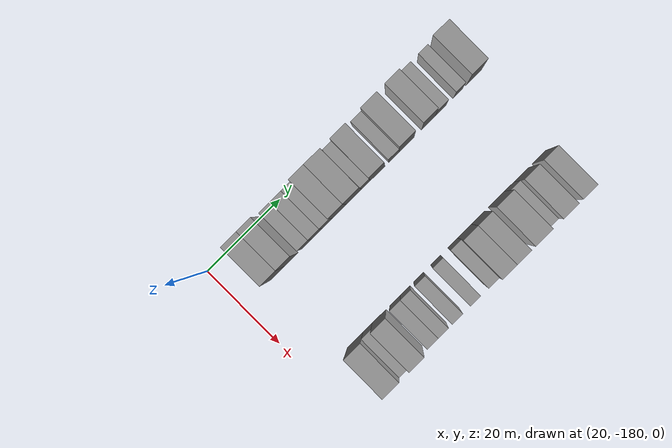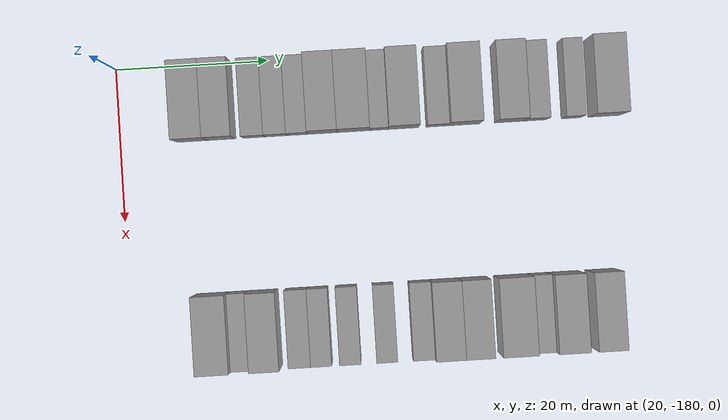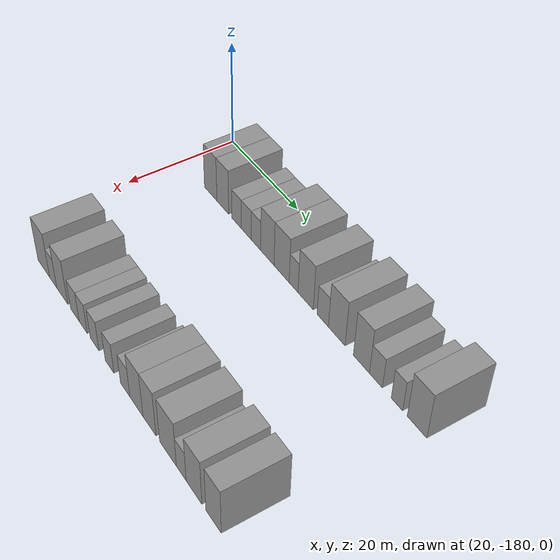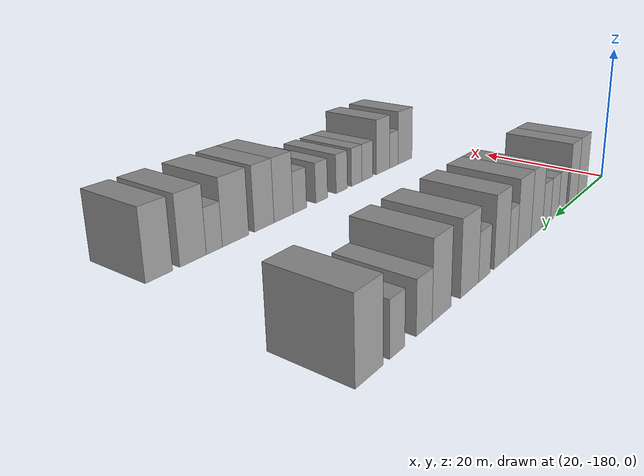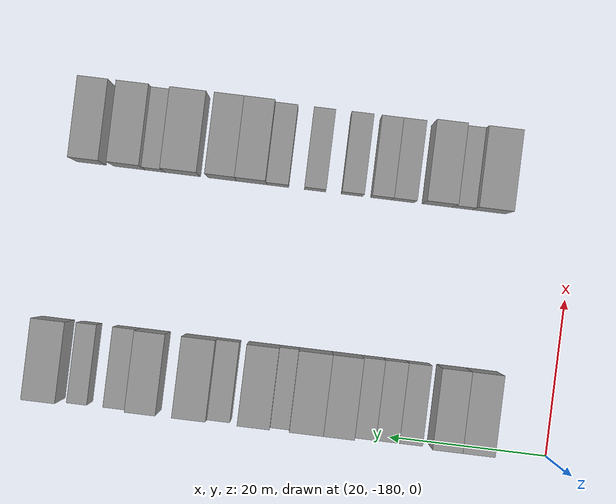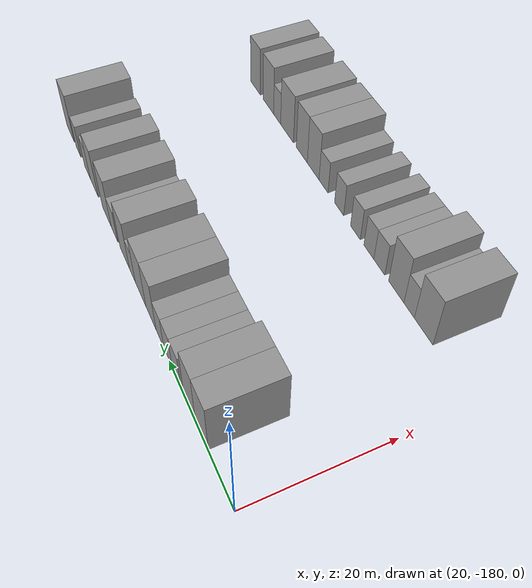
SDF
<sdf version="1.6">
 <world name="default">
  <model name="building_15">
   <static>1</static>
   <pose>25.0000 -170.4675 0 0.000000 0.000000 0.000000</pose>
   <link name="link">
    <pose>0 0 4.50 0 0 0</pose>
    <collision name="collision"><geometry><box><size>10.0000 3.9750 9.0000</size></box></geometry></collision>
    <visual name="visual">
     <cast_shadows>0</cast_shadows>
     <geometry><box><size>10.0000 3.9750 9.0000</size></box></geometry>
     <material>
      <script>
       <uri>model://grey_wall/materials/scripts</uri>
       <uri>model://grey_wall/materials/textures</uri>
       <name>vrc/grey_wall</name>
      </script>
     </material>
    </visual>
   </link>
  </model>
  <model name="building_16">
   <static>1</static>
   <pose>25.0000 -166.6328 0 0.000000 0.000000 0.000000</pose>
   <link name="link">
    <pose>0 0 4.50 0 0 0</pose>
    <collision name="collision"><geometry><box><size>10.0000 3.6943 9.0000</size></box></geometry></collision>
    <visual name="visual">
     <cast_shadows>0</cast_shadows>
     <geometry><box><size>10.0000 3.6943 9.0000</size></box></geometry>
     <material>
      <script>
       <uri>model://grey_wall/materials/scripts</uri>
       <uri>model://grey_wall/materials/textures</uri>
       <name>vrc/grey_wall</name>
      </script>
     </material>
    </visual>
   </link>
  </model>
  <model name="building_17">
   <static>1</static>
   <pose>25.0000 -162.3408 0 0.000000 0.000000 0.000000</pose>
   <link name="link">
    <pose>0 0 3.00 0 0 0</pose>
    <collision name="collision"><geometry><box><size>10.0000 2.8897 6.0000</size></box></geometry></collision>
    <visual name="visual">
     <cast_shadows>0</cast_shadows>
     <geometry><box><size>10.0000 2.8897 6.0000</size></box></geometry>
     <material>
      <script>
       <uri>model://grey_wall/materials/scripts</uri>
       <uri>model://grey_wall/materials/textures</uri>
       <name>vrc/grey_wall</name>
      </script>
     </material>
    </visual>
   </link>
  </model>
  <model name="building_18">
   <static>1</static>
   <pose>25.0000 -159.4392 0 0.000000 0.000000 0.000000</pose>
   <link name="link">
    <pose>0 0 3.00 0 0 0</pose>
    <collision name="collision"><geometry><box><size>10.0000 2.9136 6.0000</size></box></geometry></collision>
    <visual name="visual">
     <cast_shadows>0</cast_shadows>
     <geometry><box><size>10.0000 2.9136 6.0000</size></box></geometry>
     <material>
      <script>
       <uri>model://grey_wall/materials/scripts</uri>
       <uri>model://grey_wall/materials/textures</uri>
       <name>vrc/grey_wall</name>
      </script>
     </material>
    </visual>
   </link>
  </model>
  <model name="building_19">
   <static>1</static>
   <pose>25.0000 -156.6017 0 0.000000 0.000000 0.000000</pose>
   <link name="link">
    <pose>0 0 3.00 0 0 0</pose>
    <collision name="collision"><geometry><box><size>10.0000 2.7614 6.0000</size></box></geometry></collision>
    <visual name="visual">
     <cast_shadows>0</cast_shadows>
     <geometry><box><size>10.0000 2.7614 6.0000</size></box></geometry>
     <material>
      <script>
       <uri>model://grey_wall/materials/scripts</uri>
       <uri>model://grey_wall/materials/textures</uri>
       <name>vrc/grey_wall</name>
      </script>
     </material>
    </visual>
   </link>
  </model>
  <model name="building_20">
   <static>1</static>
   <pose>25.0000 -153.3091 0 0.000000 0.000000 0.000000</pose>
   <link name="link">
    <pose>0 0 4.50 0 0 0</pose>
    <collision name="collision"><geometry><box><size>10.0000 3.8238 9.0000</size></box></geometry></collision>
    <visual name="visual">
     <cast_shadows>0</cast_shadows>
     <geometry><box><size>10.0000 3.8238 9.0000</size></box></geometry>
     <material>
      <script>
       <uri>model://grey_wall/materials/scripts</uri>
       <uri>model://grey_wall/materials/textures</uri>
       <name>vrc/grey_wall</name>
      </script>
     </material>
    </visual>
   </link>
  </model>
  <model name="building_21">
   <static>1</static>
   <pose>25.0000 -149.2970 0 0.000000 0.000000 0.000000</pose>
   <link name="link">
    <pose>0 0 4.50 0 0 0</pose>
    <collision name="collision"><geometry><box><size>10.0000 4.2003 9.0000</size></box></geometry></collision>
    <visual name="visual">
     <cast_shadows>0</cast_shadows>
     <geometry><box><size>10.0000 4.2003 9.0000</size></box></geometry>
     <material>
      <script>
       <uri>model://grey_wall/materials/scripts</uri>
       <uri>model://grey_wall/materials/textures</uri>
       <name>vrc/grey_wall</name>
      </script>
     </material>
    </visual>
   </link>
  </model>
  <model name="building_22">
   <static>1</static>
   <pose>25.0000 -145.9917 0 0.000000 0.000000 0.000000</pose>
   <link name="link">
    <pose>0 0 3.00 0 0 0</pose>
    <collision name="collision"><geometry><box><size>10.0000 2.4105 6.0000</size></box></geometry></collision>
    <visual name="visual">
     <cast_shadows>0</cast_shadows>
     <geometry><box><size>10.0000 2.4105 6.0000</size></box></geometry>
     <material>
      <script>
       <uri>model://grey_wall/materials/scripts</uri>
       <uri>model://grey_wall/materials/textures</uri>
       <name>vrc/grey_wall</name>
      </script>
     </material>
    </visual>
   </link>
  </model>
  <model name="building_23">
   <static>1</static>
   <pose>25.0000 -142.7866 0 0.000000 0.000000 0.000000</pose>
   <link name="link">
    <pose>0 0 4.50 0 0 0</pose>
    <collision name="collision"><geometry><box><size>10.0000 3.9996 9.0000</size></box></geometry></collision>
    <visual name="visual">
     <cast_shadows>0</cast_shadows>
     <geometry><box><size>10.0000 3.9996 9.0000</size></box></geometry>
     <material>
      <script>
       <uri>model://grey_wall/materials/scripts</uri>
       <uri>model://grey_wall/materials/textures</uri>
       <name>vrc/grey_wall</name>
      </script>
     </material>
    </visual>
   </link>
  </model>
  <model name="building_24">
   <static>1</static>
   <pose>25.0000 -138.3526 0 0.000000 0.000000 0.000000</pose>
   <link name="link">
    <pose>0 0 3.00 0 0 0</pose>
    <collision name="collision"><geometry><box><size>10.0000 2.8685 6.0000</size></box></geometry></collision>
    <visual name="visual">
     <cast_shadows>0</cast_shadows>
     <geometry><box><size>10.0000 2.8685 6.0000</size></box></geometry>
     <material>
      <script>
       <uri>model://grey_wall/materials/scripts</uri>
       <uri>model://grey_wall/materials/textures</uri>
       <name>vrc/grey_wall</name>
      </script>
     </material>
    </visual>
   </link>
  </model>
  <model name="building_25">
   <static>1</static>
   <pose>25.0000 -134.8395 0 0.000000 0.000000 0.000000</pose>
   <link name="link">
    <pose>0 0 4.50 0 0 0</pose>
    <collision name="collision"><geometry><box><size>10.0000 4.1577 9.0000</size></box></geometry></collision>
    <visual name="visual">
     <cast_shadows>0</cast_shadows>
     <geometry><box><size>10.0000 4.1577 9.0000</size></box></geometry>
     <material>
      <script>
       <uri>model://grey_wall/materials/scripts</uri>
       <uri>model://grey_wall/materials/textures</uri>
       <name>vrc/grey_wall</name>
      </script>
     </material>
    </visual>
   </link>
  </model>
  <model name="building_26">
   <static>1</static>
   <pose>25.0000 -128.8583 0 0.000000 0.000000 0.000000</pose>
   <link name="link">
    <pose>0 0 4.50 0 0 0</pose>
    <collision name="collision"><geometry><box><size>10.0000 3.8046 9.0000</size></box></geometry></collision>
    <visual name="visual">
     <cast_shadows>0</cast_shadows>
     <geometry><box><size>10.0000 3.8046 9.0000</size></box></geometry>
     <material>
      <script>
       <uri>model://grey_wall/materials/scripts</uri>
       <uri>model://grey_wall/materials/textures</uri>
       <name>vrc/grey_wall</name>
      </script>
     </material>
    </visual>
   </link>
  </model>
  <model name="building_27">
   <static>1</static>
   <pose>25.0000 -125.4701 0 0.000000 0.000000 0.000000</pose>
   <link name="link">
    <pose>0 0 3.00 0 0 0</pose>
    <collision name="collision"><geometry><box><size>10.0000 2.9719 6.0000</size></box></geometry></collision>
    <visual name="visual">
     <cast_shadows>0</cast_shadows>
     <geometry><box><size>10.0000 2.9719 6.0000</size></box></geometry>
     <material>
      <script>
       <uri>model://grey_wall/materials/scripts</uri>
       <uri>model://grey_wall/materials/textures</uri>
       <name>vrc/grey_wall</name>
      </script>
     </material>
    </visual>
   </link>
  </model>
  <model name="building_28">
   <static>1</static>
   <pose>25.0000 -120.7214 0 0.000000 0.000000 0.000000</pose>
   <link name="link">
    <pose>0 0 3.00 0 0 0</pose>
    <collision name="collision"><geometry><box><size>10.0000 2.5256 6.0000</size></box></geometry></collision>
    <visual name="visual">
     <cast_shadows>0</cast_shadows>
     <geometry><box><size>10.0000 2.5256 6.0000</size></box></geometry>
     <material>
      <script>
       <uri>model://grey_wall/materials/scripts</uri>
       <uri>model://grey_wall/materials/textures</uri>
       <name>vrc/grey_wall</name>
      </script>
     </material>
    </visual>
   </link>
  </model>
  <model name="building_29">
   <static>1</static>
   <pose>25.0000 -116.3703 0 0.000000 0.000000 0.000000</pose>
   <link name="link">
    <pose>0 0 4.50 0 0 0</pose>
    <collision name="collision"><geometry><box><size>10.0000 4.1766 9.0000</size></box></geometry></collision>
    <visual name="visual">
     <cast_shadows>0</cast_shadows>
     <geometry><box><size>10.0000 4.1766 9.0000</size></box></geometry>
     <material>
      <script>
       <uri>model://grey_wall/materials/scripts</uri>
       <uri>model://grey_wall/materials/textures</uri>
       <name>vrc/grey_wall</name>
      </script>
     </material>
    </visual>
   </link>
  </model>
  <model name="building_127">
   <static>1</static>
   <pose>55.0000 -169.0062 0 0.000000 0.000000 0.000000</pose>
   <link name="link">
    <pose>0 0 4.50 0 0 0</pose>
    <collision name="collision"><geometry><box><size>10.0000 4.3155 9.0000</size></box></geometry></collision>
    <visual name="visual">
     <cast_shadows>0</cast_shadows>
     <geometry><box><size>10.0000 4.3155 9.0000</size></box></geometry>
     <material>
      <script>
       <uri>model://grey_wall/materials/scripts</uri>
       <uri>model://grey_wall/materials/textures</uri>
       <name>vrc/grey_wall</name>
      </script>
     </material>
    </visual>
   </link>
  </model>
  <model name="building_128">
   <static>1</static>
   <pose>55.0000 -165.5836 0 0.000000 0.000000 0.000000</pose>
   <link name="link">
    <pose>0 0 3.00 0 0 0</pose>
    <collision name="collision"><geometry><box><size>10.0000 2.5298 6.0000</size></box></geometry></collision>
    <visual name="visual">
     <cast_shadows>0</cast_shadows>
     <geometry><box><size>10.0000 2.5298 6.0000</size></box></geometry>
     <material>
      <script>
       <uri>model://grey_wall/materials/scripts</uri>
       <uri>model://grey_wall/materials/textures</uri>
       <name>vrc/grey_wall</name>
      </script>
     </material>
    </visual>
   </link>
  </model>
  <model name="building_129">
   <static>1</static>
   <pose>55.0000 -162.3957 0 0.000000 0.000000 0.000000</pose>
   <link name="link">
    <pose>0 0 4.50 0 0 0</pose>
    <collision name="collision"><geometry><box><size>10.0000 3.8460 9.0000</size></box></geometry></collision>
    <visual name="visual">
     <cast_shadows>0</cast_shadows>
     <geometry><box><size>10.0000 3.8460 9.0000</size></box></geometry>
     <material>
      <script>
       <uri>model://grey_wall/materials/scripts</uri>
       <uri>model://grey_wall/materials/textures</uri>
       <name>vrc/grey_wall</name>
      </script>
     </material>
    </visual>
   </link>
  </model>
  <model name="building_130">
   <static>1</static>
   <pose>55.0000 -158.0358 0 0.000000 0.000000 0.000000</pose>
   <link name="link">
    <pose>0 0 3.00 0 0 0</pose>
    <collision name="collision"><geometry><box><size>10.0000 2.8737 6.0000</size></box></geometry></collision>
    <visual name="visual">
     <cast_shadows>0</cast_shadows>
     <geometry><box><size>10.0000 2.8737 6.0000</size></box></geometry>
     <material>
      <script>
       <uri>model://grey_wall/materials/scripts</uri>
       <uri>model://grey_wall/materials/textures</uri>
       <name>vrc/grey_wall</name>
      </script>
     </material>
    </visual>
   </link>
  </model>
  <model name="building_131">
   <static>1</static>
   <pose>55.0000 -155.2460 0 0.000000 0.000000 0.000000</pose>
   <link name="link">
    <pose>0 0 3.00 0 0 0</pose>
    <collision name="collision"><geometry><box><size>10.0000 2.7060 6.0000</size></box></geometry></collision>
    <visual name="visual">
     <cast_shadows>0</cast_shadows>
     <geometry><box><size>10.0000 2.7060 6.0000</size></box></geometry>
     <material>
      <script>
       <uri>model://grey_wall/materials/scripts</uri>
       <uri>model://grey_wall/materials/textures</uri>
       <name>vrc/grey_wall</name>
      </script>
     </material>
    </visual>
   </link>
  </model>
  <model name="building_132">
   <static>1</static>
   <pose>55.0000 -151.5112 0 0.000000 0.000000 0.000000</pose>
   <link name="link">
    <pose>0 0 3.00 0 0 0</pose>
    <collision name="collision"><geometry><box><size>10.0000 2.7635 6.0000</size></box></geometry></collision>
    <visual name="visual">
     <cast_shadows>0</cast_shadows>
     <geometry><box><size>10.0000 2.7635 6.0000</size></box></geometry>
     <material>
      <script>
       <uri>model://grey_wall/materials/scripts</uri>
       <uri>model://grey_wall/materials/textures</uri>
       <name>vrc/grey_wall</name>
      </script>
     </material>
    </visual>
   </link>
  </model>
  <model name="building_133">
   <static>1</static>
   <pose>55.0000 -146.7765 0 0.000000 0.000000 0.000000</pose>
   <link name="link">
    <pose>0 0 3.00 0 0 0</pose>
    <collision name="collision"><geometry><box><size>10.0000 2.7059 6.0000</size></box></geometry></collision>
    <visual name="visual">
     <cast_shadows>0</cast_shadows>
     <geometry><box><size>10.0000 2.7059 6.0000</size></box></geometry>
     <material>
      <script>
       <uri>model://grey_wall/materials/scripts</uri>
       <uri>model://grey_wall/materials/textures</uri>
       <name>vrc/grey_wall</name>
      </script>
     </material>
    </visual>
   </link>
  </model>
  <model name="building_134">
   <static>1</static>
   <pose>55.0000 -142.0186 0 0.000000 0.000000 0.000000</pose>
   <link name="link">
    <pose>0 0 3.00 0 0 0</pose>
    <collision name="collision"><geometry><box><size>10.0000 2.8098 6.0000</size></box></geometry></collision>
    <visual name="visual">
     <cast_shadows>0</cast_shadows>
     <geometry><box><size>10.0000 2.8098 6.0000</size></box></geometry>
     <material>
      <script>
       <uri>model://grey_wall/materials/scripts</uri>
       <uri>model://grey_wall/materials/textures</uri>
       <name>vrc/grey_wall</name>
      </script>
     </material>
    </visual>
   </link>
  </model>
  <model name="building_135">
   <static>1</static>
   <pose>55.0000 -138.7105 0 0.000000 0.000000 0.000000</pose>
   <link name="link">
    <pose>0 0 4.50 0 0 0</pose>
    <collision name="collision"><geometry><box><size>10.0000 3.8065 9.0000</size></box></geometry></collision>
    <visual name="visual">
     <cast_shadows>0</cast_shadows>
     <geometry><box><size>10.0000 3.8065 9.0000</size></box></geometry>
     <material>
      <script>
       <uri>model://grey_wall/materials/scripts</uri>
       <uri>model://grey_wall/materials/textures</uri>
       <name>vrc/grey_wall</name>
      </script>
     </material>
    </visual>
   </link>
  </model>
  <model name="building_136">
   <static>1</static>
   <pose>55.0000 -134.9739 0 0.000000 0.000000 0.000000</pose>
   <link name="link">
    <pose>0 0 4.50 0 0 0</pose>
    <collision name="collision"><geometry><box><size>10.0000 3.6666 9.0000</size></box></geometry></collision>
    <visual name="visual">
     <cast_shadows>0</cast_shadows>
     <geometry><box><size>10.0000 3.6666 9.0000</size></box></geometry>
     <material>
      <script>
       <uri>model://grey_wall/materials/scripts</uri>
       <uri>model://grey_wall/materials/textures</uri>
       <name>vrc/grey_wall</name>
      </script>
     </material>
    </visual>
   </link>
  </model>
  <model name="building_137">
   <static>1</static>
   <pose>55.0000 -129.8917 0 0.000000 0.000000 0.000000</pose>
   <link name="link">
    <pose>0 0 4.50 0 0 0</pose>
    <collision name="collision"><geometry><box><size>10.0000 4.4978 9.0000</size></box></geometry></collision>
    <visual name="visual">
     <cast_shadows>0</cast_shadows>
     <geometry><box><size>10.0000 4.4978 9.0000</size></box></geometry>
     <material>
      <script>
       <uri>model://grey_wall/materials/scripts</uri>
       <uri>model://grey_wall/materials/textures</uri>
       <name>vrc/grey_wall</name>
      </script>
     </material>
    </visual>
   </link>
  </model>
  <model name="building_138">
   <static>1</static>
   <pose>55.0000 -126.3639 0 0.000000 0.000000 0.000000</pose>
   <link name="link">
    <pose>0 0 3.00 0 0 0</pose>
    <collision name="collision"><geometry><box><size>10.0000 2.5578 6.0000</size></box></geometry></collision>
    <visual name="visual">
     <cast_shadows>0</cast_shadows>
     <geometry><box><size>10.0000 2.5578 6.0000</size></box></geometry>
     <material>
      <script>
       <uri>model://grey_wall/materials/scripts</uri>
       <uri>model://grey_wall/materials/textures</uri>
       <name>vrc/grey_wall</name>
      </script>
     </material>
    </visual>
   </link>
  </model>
  <model name="building_139">
   <static>1</static>
   <pose>55.0000 -123.0900 0 0.000000 0.000000 0.000000</pose>
   <link name="link">
    <pose>0 0 4.50 0 0 0</pose>
    <collision name="collision"><geometry><box><size>10.0000 3.9898 9.0000</size></box></geometry></collision>
    <visual name="visual">
     <cast_shadows>0</cast_shadows>
     <geometry><box><size>10.0000 3.9898 9.0000</size></box></geometry>
     <material>
      <script>
       <uri>model://grey_wall/materials/scripts</uri>
       <uri>model://grey_wall/materials/textures</uri>
       <name>vrc/grey_wall</name>
      </script>
     </material>
    </visual>
   </link>
  </model>
  <model name="building_140">
   <static>1</static>
   <pose>55.0000 -118.2226 0 0.000000 0.000000 0.000000</pose>
   <link name="link">
    <pose>0 0 4.50 0 0 0</pose>
    <collision name="collision"><geometry><box><size>10.0000 3.7450 9.0000</size></box></geometry></collision>
    <visual name="visual">
     <cast_shadows>0</cast_shadows>
     <geometry><box><size>10.0000 3.7450 9.0000</size></box></geometry>
     <material>
      <script>
       <uri>model://grey_wall/materials/scripts</uri>
       <uri>model://grey_wall/materials/textures</uri>
       <name>vrc/grey_wall</name>
      </script>
     </material>
    </visual>
   </link>
  </model>
 </world>
</sdf>
